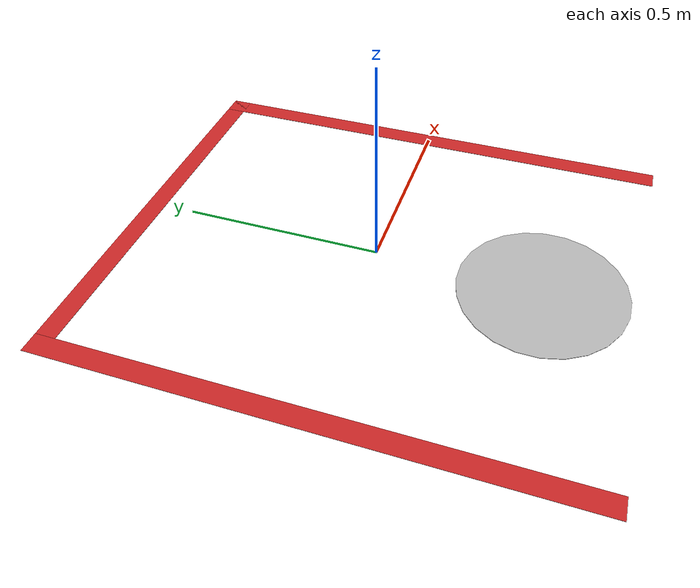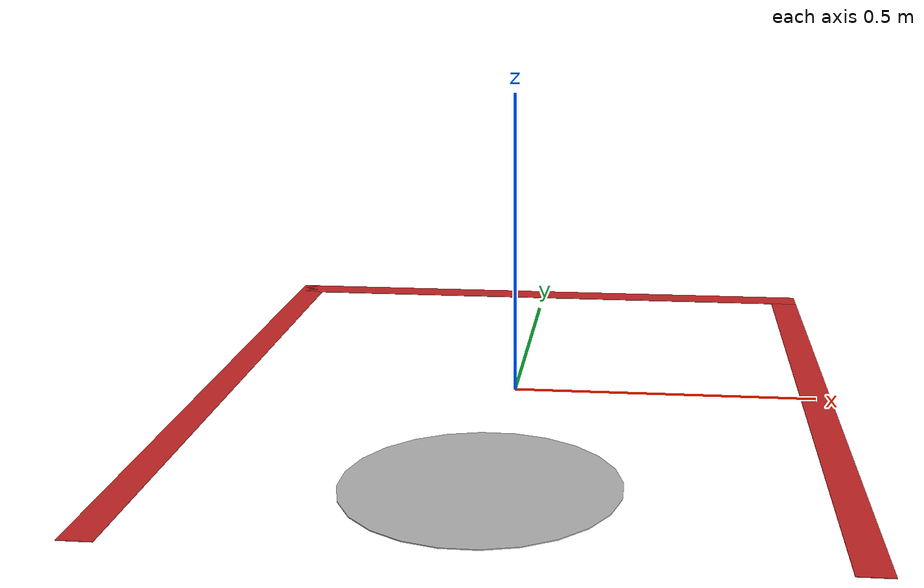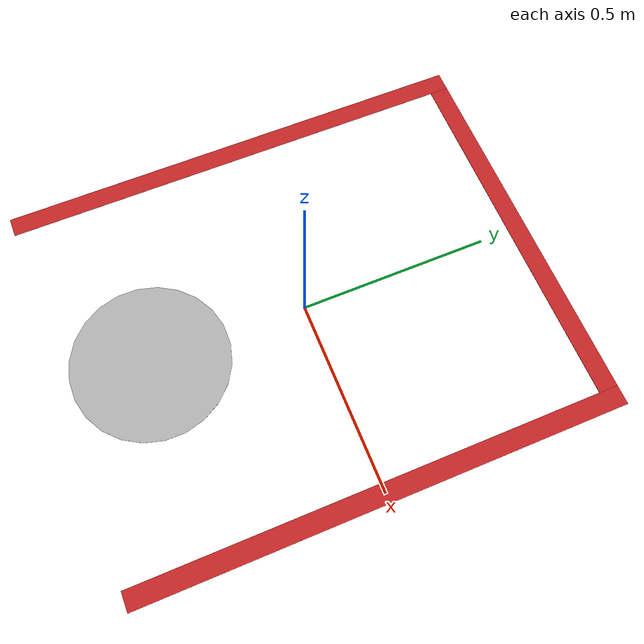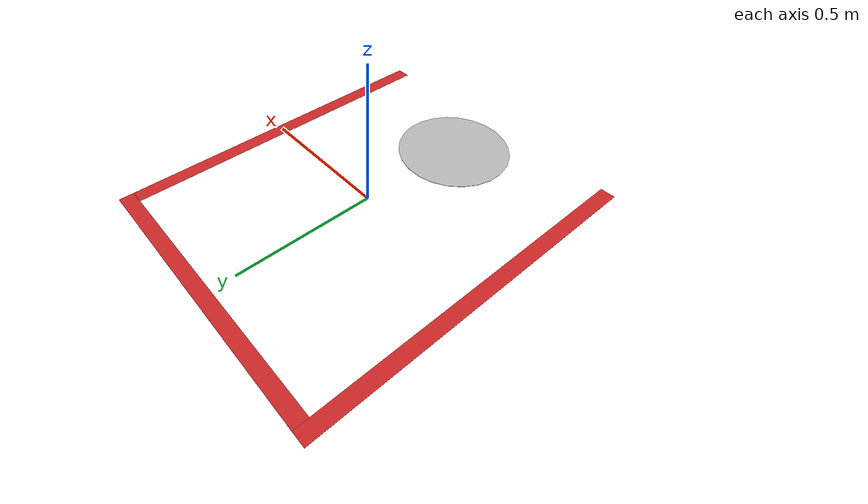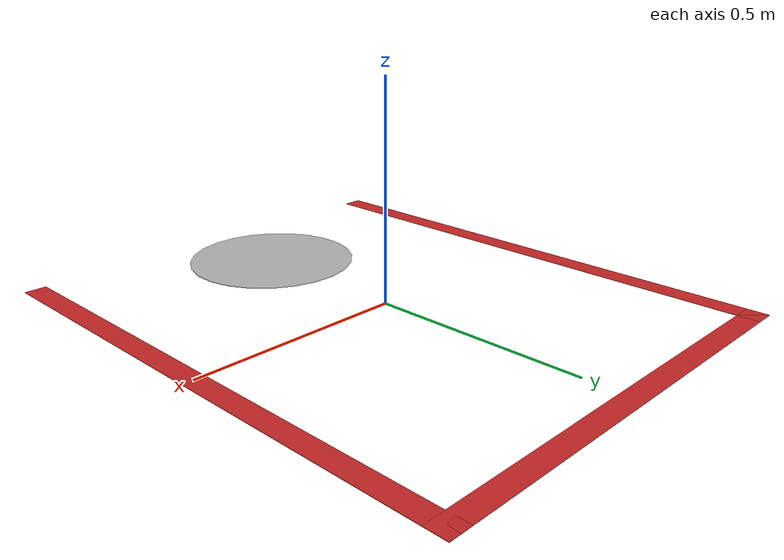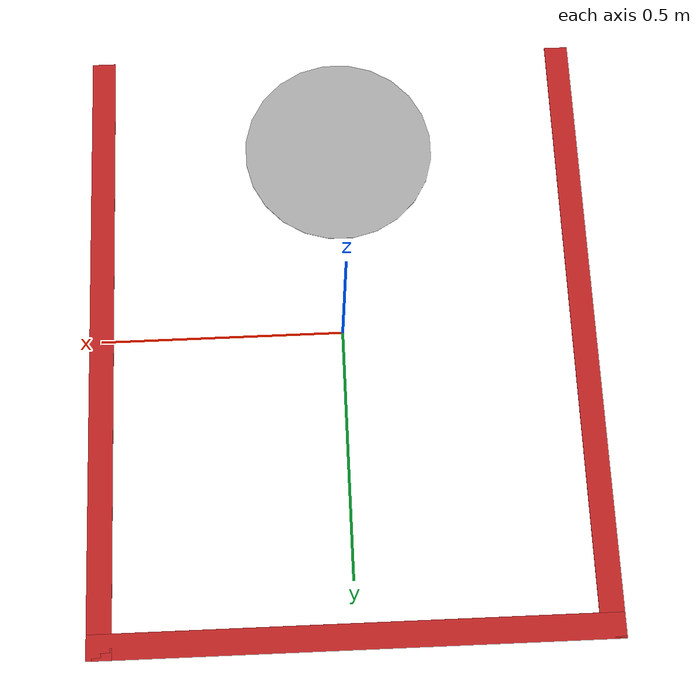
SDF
<?xml version='1.0'?>
<sdf version='1.6'>
  <model name='oneDemoParking'>
    <link name='link_1'>
      <inertial>
        <mass>1</mass>
        <inertia>
          <ixx>0.166667</ixx>
          <ixy>0</ixy>
          <ixz>0</ixz>
          <iyy>0.166667</iyy>
          <iyz>0</iyz>
          <izz>0.166667</izz>
        </inertia>
        <pose frame=''>0 0 0 0 -0 0</pose>
      </inertial>
      <pose frame=''>0 0 0 0 -0 0</pose>
      <gravity>1</gravity>
      <self_collide>0</self_collide>
      <kinematic>0</kinematic>
      <enable_wind>0</enable_wind>
      <visual name='visual'>
        <pose frame=''>-0.5 0 0 0 -0 0</pose>
        <geometry>
          <box>
            <size>0.05 1.26 0.001</size>
          </box>
        </geometry>
        <material>
          <lighting>1</lighting>
          <script>
            <uri>file://media/materials/scripts/gazebo.material</uri>
            <name>Gazebo/Red</name>
          </script>
          <shader type='pixel'>
            <normal_map>__default__</normal_map>
          </shader>
        </material>
        <transparency>0</transparency>
        <cast_shadows>1</cast_shadows>
      </visual>
      <visual name='ModelPreview_3::link_1::visual_3'>
        <pose frame=''>0 0.605 0 0 -0 0</pose>
        <geometry>
          <box>
            <size>1.05 0.05 0.001</size>
          </box>
        </geometry>
        <material>
          <lighting>1</lighting>
          <script>
            <uri>file://media/materials/scripts/gazebo.material</uri>
            <name>Gazebo/Red</name>
          </script>
          <shader type='pixel'>
            <normal_map>__default__</normal_map>
          </shader>
        </material>
        <transparency>0</transparency>
        <cast_shadows>1</cast_shadows>
      </visual>
      <visual name='ModelPreview_3::link_1::visual_2'>
        <pose frame=''>0.5 0 0 0 -0 0</pose>
        <geometry>
          <box>
            <size>0.05 1.26 0.001</size>
          </box>
        </geometry>
        <material>
          <lighting>1</lighting>
          <script>
            <uri>file://media/materials/scripts/gazebo.material</uri>
            <name>Gazebo/Red</name>
          </script>
          <shader type='pixel'>
            <normal_map>__default__</normal_map>
          </shader>
        </material>
        <transparency>0</transparency>
        <cast_shadows>1</cast_shadows>
      </visual>
      <visual name='ModelPreview_3::link_1::visual_4'>
        <pose frame=''>0.26 -0.31 0 0 -0 2.7</pose>
        <geometry>
	   <mesh>
             <uri>model://oneDemoParking/model/model.dae</uri>
             <scale>0.22 0.22 0.22</scale>
           </mesh>
        </geometry>
        <material>
          <lighting>1</lighting>
          <shader type='pixel'>
            <normal_map>__default__</normal_map>
          </shader>
        </material>
        <transparency>0</transparency>
        <cast_shadows>1</cast_shadows>
      </visual>
      <collision name='collision'>
        <laser_retro>0</laser_retro>
        <max_contacts>10</max_contacts>
        <pose frame=''>-0.5 0 0 0 -0 0</pose>
        <geometry>
          <box>
            <size>0.05 1.26 0.001</size>
          </box>
        </geometry>
        <surface>
          <friction>
            <ode>
              <mu>1</mu>
              <mu2>1</mu2>
              <fdir1>0 0 0</fdir1>
              <slip1>0</slip1>
              <slip2>0</slip2>
            </ode>
            <torsional>
              <coefficient>1</coefficient>
              <patch_radius>0</patch_radius>
              <surface_radius>0</surface_radius>
              <use_patch_radius>1</use_patch_radius>
              <ode>
                <slip>0</slip>
              </ode>
            </torsional>
          </friction>
          <bounce>
            <restitution_coefficient>0</restitution_coefficient>
            <threshold>1e+06</threshold>
          </bounce>
          <contact>
            <collide_without_contact>0</collide_without_contact>
            <collide_without_contact_bitmask>1</collide_without_contact_bitmask>
            <collide_bitmask>1</collide_bitmask>
            <ode>
              <soft_cfm>0</soft_cfm>
              <soft_erp>0.2</soft_erp>
              <kp>1e+13</kp>
              <kd>1</kd>
              <max_vel>0.01</max_vel>
              <min_depth>0</min_depth>
            </ode>
            <bullet>
              <split_impulse>1</split_impulse>
              <split_impulse_penetration_threshold>-0.01</split_impulse_penetration_threshold>
              <soft_cfm>0</soft_cfm>
              <soft_erp>0.2</soft_erp>
              <kp>1e+13</kp>
              <kd>1</kd>
            </bullet>
          </contact>
        </surface>
      </collision>
      <collision name='collision_1'>
        <laser_retro>0</laser_retro>
        <max_contacts>10</max_contacts>
        <pose frame=''>0.5 0 0 0 -0 0</pose>
        <geometry>
          <box>
            <size>0.05 1.26 0.001</size>
          </box>
        </geometry>
        <surface>
          <friction>
            <ode>
              <mu>1</mu>
              <mu2>1</mu2>
              <fdir1>0 0 0</fdir1>
              <slip1>0</slip1>
              <slip2>0</slip2>
            </ode>
            <torsional>
              <coefficient>1</coefficient>
              <patch_radius>0</patch_radius>
              <surface_radius>0</surface_radius>
              <use_patch_radius>1</use_patch_radius>
              <ode>
                <slip>0</slip>
              </ode>
            </torsional>
          </friction>
          <bounce>
            <restitution_coefficient>0</restitution_coefficient>
            <threshold>1e+06</threshold>
          </bounce>
          <contact>
            <collide_without_contact>0</collide_without_contact>
            <collide_without_contact_bitmask>1</collide_without_contact_bitmask>
            <collide_bitmask>1</collide_bitmask>
            <ode>
              <soft_cfm>0</soft_cfm>
              <soft_erp>0.2</soft_erp>
              <kp>1e+13</kp>
              <kd>1</kd>
              <max_vel>0.01</max_vel>
              <min_depth>0</min_depth>
            </ode>
            <bullet>
              <split_impulse>1</split_impulse>
              <split_impulse_penetration_threshold>-0.01</split_impulse_penetration_threshold>
              <soft_cfm>0</soft_cfm>
              <soft_erp>0.2</soft_erp>
              <kp>1e+13</kp>
              <kd>1</kd>
            </bullet>
          </contact>
        </surface>
      </collision>
      <collision name='collision_2'>
        <laser_retro>0</laser_retro>
        <max_contacts>10</max_contacts>
        <pose frame=''>0 0.605 0 0 -0 0</pose>
        <geometry>
          <box>
            <size>1.05 0.05 0.001</size>
          </box>
        </geometry>
        <surface>
          <friction>
            <ode>
              <mu>1</mu>
              <mu2>1</mu2>
              <fdir1>0 0 0</fdir1>
              <slip1>0</slip1>
              <slip2>0</slip2>
            </ode>
            <torsional>
              <coefficient>1</coefficient>
              <patch_radius>0</patch_radius>
              <surface_radius>0</surface_radius>
              <use_patch_radius>1</use_patch_radius>
              <ode>
                <slip>0</slip>
              </ode>
            </torsional>
          </friction>
          <bounce>
            <restitution_coefficient>0</restitution_coefficient>
            <threshold>1e+06</threshold>
          </bounce>
          <contact>
            <collide_without_contact>0</collide_without_contact>
            <collide_without_contact_bitmask>1</collide_without_contact_bitmask>
            <collide_bitmask>1</collide_bitmask>
            <ode>
              <soft_cfm>0</soft_cfm>
              <soft_erp>0.2</soft_erp>
              <kp>1e+13</kp>
              <kd>1</kd>
              <max_vel>0.01</max_vel>
              <min_depth>0</min_depth>
            </ode>
            <bullet>
              <split_impulse>1</split_impulse>
              <split_impulse_penetration_threshold>-0.01</split_impulse_penetration_threshold>
              <soft_cfm>0</soft_cfm>
              <soft_erp>0.2</soft_erp>
              <kp>1e+13</kp>
              <kd>1</kd>
            </bullet>
          </contact>
        </surface>
      </collision>
      <collision name='collision_3'>
        <laser_retro>0</laser_retro>
        <max_contacts>10</max_contacts>
        <pose frame=''>-0 -0.4 0 0 -0 0</pose>
        <geometry>
          <cylinder>
            <radius>0.2</radius>
            <length>0.001</length>
          </cylinder>
        </geometry>
        <surface>
          <friction>
            <ode>
              <mu>1</mu>
              <mu2>1</mu2>
              <fdir1>0 0 0</fdir1>
              <slip1>0</slip1>
              <slip2>0</slip2>
            </ode>
            <torsional>
              <coefficient>1</coefficient>
              <patch_radius>0</patch_radius>
              <surface_radius>0</surface_radius>
              <use_patch_radius>1</use_patch_radius>
              <ode>
                <slip>0</slip>
              </ode>
            </torsional>
          </friction>
          <bounce>
            <restitution_coefficient>0</restitution_coefficient>
            <threshold>1e+06</threshold>
          </bounce>
          <contact>
            <collide_without_contact>0</collide_without_contact>
            <collide_without_contact_bitmask>1</collide_without_contact_bitmask>
            <collide_bitmask>1</collide_bitmask>
            <ode>
              <soft_cfm>0</soft_cfm>
              <soft_erp>0.2</soft_erp>
              <kp>1e+13</kp>
              <kd>1</kd>
              <max_vel>0.01</max_vel>
              <min_depth>0</min_depth>
            </ode>
            <bullet>
              <split_impulse>1</split_impulse>
              <split_impulse_penetration_threshold>-0.01</split_impulse_penetration_threshold>
              <soft_cfm>0</soft_cfm>
              <soft_erp>0.2</soft_erp>
              <kp>1e+13</kp>
              <kd>1</kd>
            </bullet>
          </contact>
        </surface>
      </collision>
    </link>
    <static>1</static>
    <allow_auto_disable>1</allow_auto_disable>
  </model>
</sdf>
